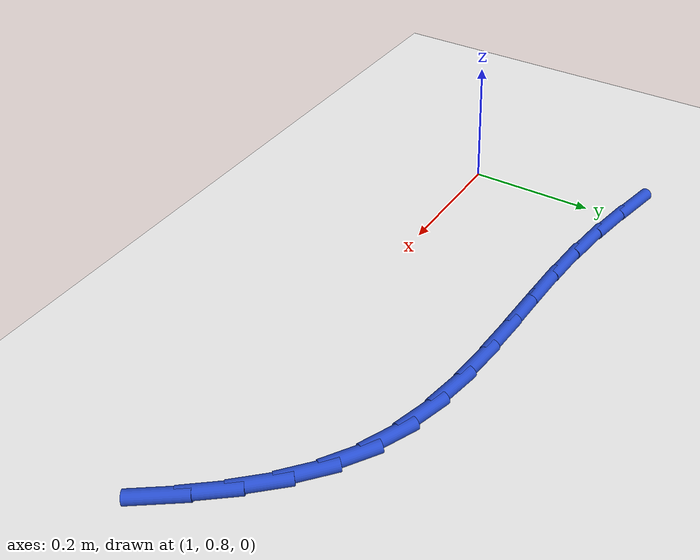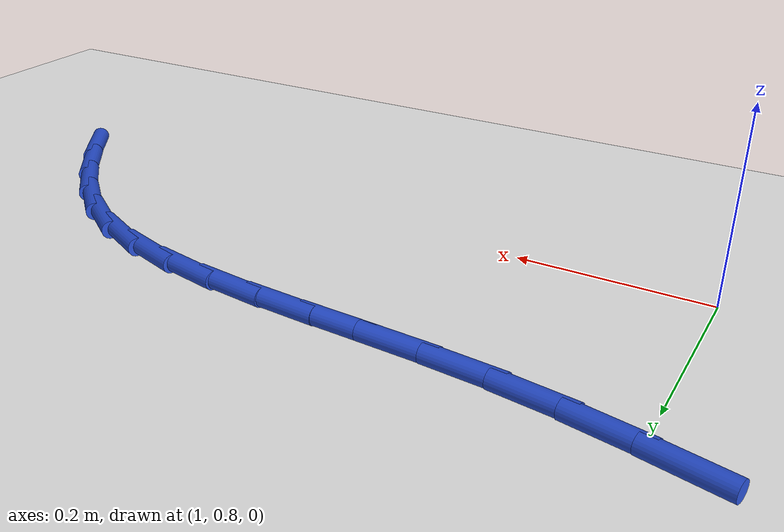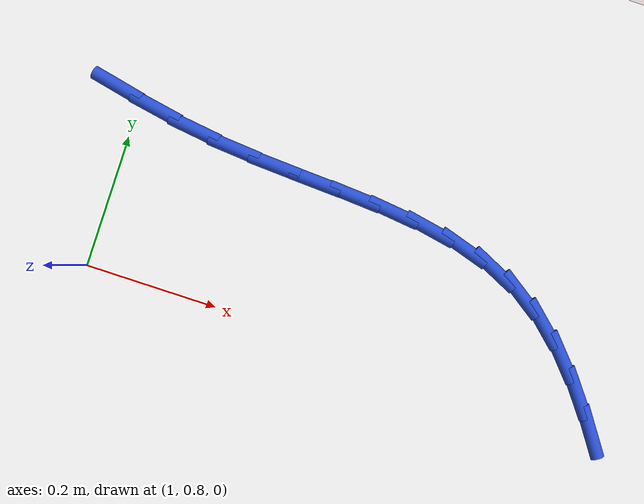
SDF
<sdf version="1.6">
 <world name="default">
  <model name="ground_plane">
   <static>1</static>
   <link name="link">
    <collision name="collision">
     <geometry><plane><normal>0 0 1</normal><size>100 100</size></plane></geometry>
     <surface><friction><ode><mu>100</mu><mu2>50</mu2></ode></friction></surface>
    </collision>
    <visual name="visual">
     <cast_shadows>0</cast_shadows>
     <geometry><plane><normal>0 0 1</normal><size>100 100</size></plane></geometry>
     <material>
      <script><uri>file://media/materials/scripts/gazebo.material</uri><name>Gazebo/WhiteGlow</name></script>
     </material>
    </visual>
   </link>
  </model>
  <model name="line">
   <link name="link_28">
    <pose>0.9638628912790067 1.0659548163425898 0.01 0 1.57 -0.21610102213397187</pose>
    <collision name="collision">
     <geometry><cylinder><radius>0.01</radius><length>0.08</length></cylinder></geometry>
    </collision>
    <visual name="visual">
     <material>
      <script><name>Gazebo/Blue</name><uri>file://media/materials/scripts/gazebo.material</uri></script>
     </material>
     <geometry><cylinder><radius>0.01</radius><length>0.08</length></cylinder></geometry>
    </visual>
   </link>
   <link name="link_29">
    <pose>1.0272113236072205 1.052047997177063 0.01 0 1.57 -0.18456379397973055</pose>
    <collision name="collision">
     <geometry><cylinder><radius>0.01</radius><length>0.08</length></cylinder></geometry>
    </collision>
    <visual name="visual">
     <material>
      <script><name>Gazebo/Blue</name><uri>file://media/materials/scripts/gazebo.material</uri></script>
     </material>
     <geometry><cylinder><radius>0.01</radius><length>0.08</length></cylinder></geometry>
    </visual>
   </link>
   <link name="link_30">
    <pose>1.0912292627138227 1.0400965908636473 0.01 0 1.57 -0.13372721459481365</pose>
    <collision name="collision">
     <geometry><cylinder><radius>0.01</radius><length>0.08</length></cylinder></geometry>
    </collision>
    <visual name="visual">
     <material>
      <script><name>Gazebo/Blue</name><uri>file://media/materials/scripts/gazebo.material</uri></script>
     </material>
     <geometry><cylinder><radius>0.01</radius><length>0.08</length></cylinder></geometry>
    </visual>
   </link>
   <link name="link_31">
    <pose>1.155617329324461 1.0314344575143537 0.01 0 1.57 -0.0845963498728071</pose>
    <collision name="collision">
     <geometry><cylinder><radius>0.01</radius><length>0.08</length></cylinder></geometry>
    </collision>
    <visual name="visual">
     <material>
      <script><name>Gazebo/Blue</name><uri>file://media/materials/scripts/gazebo.material</uri></script>
     </material>
     <geometry><cylinder><radius>0.01</radius><length>0.08</length></cylinder></geometry>
    </visual>
   </link>
   <link name="link_32">
    <pose>1.2199492180161533 1.0259791947310575 0.01 0 1.57 -0.05717277920120603</pose>
    <collision name="collision">
     <geometry><cylinder><radius>0.01</radius><length>0.08</length></cylinder></geometry>
    </collision>
    <visual name="visual">
     <material>
      <script><name>Gazebo/Blue</name><uri>file://media/materials/scripts/gazebo.material</uri></script>
     </material>
     <geometry><cylinder><radius>0.01</radius><length>0.08</length></cylinder></geometry>
    </visual>
   </link>
   <link name="link_33">
    <pose>1.2836806038269053 1.0223315189972246 0.01 0 1.57 -0.05251325180005245</pose>
    <collision name="collision">
     <geometry><cylinder><radius>0.01</radius><length>0.08</length></cylinder></geometry>
    </collision>
    <visual name="visual">
     <material>
      <script><name>Gazebo/Blue</name><uri>file://media/materials/scripts/gazebo.material</uri></script>
     </material>
     <geometry><cylinder><radius>0.01</radius><length>0.08</length></cylinder></geometry>
    </visual>
   </link>
   <link name="link_34">
    <pose>1.3462626771668105 1.0190421065922184 0.01 0 1.57 -0.07182414391564952</pose>
    <collision name="collision">
     <geometry><cylinder><radius>0.01</radius><length>0.08</length></cylinder></geometry>
    </collision>
    <visual name="visual">
     <material>
      <script><name>Gazebo/Blue</name><uri>file://media/materials/scripts/gazebo.material</uri></script>
     </material>
     <geometry><cylinder><radius>0.01</radius><length>0.08</length></cylinder></geometry>
    </visual>
   </link>
   <link name="link_35">
    <pose>1.407146628445965 1.0146616337954029 0.01 0 1.57 -0.11748525498872829</pose>
    <collision name="collision">
     <geometry><cylinder><radius>0.01</radius><length>0.08</length></cylinder></geometry>
    </collision>
    <visual name="visual">
     <material>
      <script><name>Gazebo/Blue</name><uri>file://media/materials/scripts/gazebo.material</uri></script>
     </material>
     <geometry><cylinder><radius>0.01</radius><length>0.08</length></cylinder></geometry>
    </visual>
   </link>
   <link name="link_36">
    <pose>1.4657836480744617 1.007740776886142 0.01 0 1.57 -0.19295443300244342</pose>
    <collision name="collision">
     <geometry><cylinder><radius>0.01</radius><length>0.08</length></cylinder></geometry>
    </collision>
    <visual name="visual">
     <material>
      <script><name>Gazebo/Blue</name><uri>file://media/materials/scripts/gazebo.material</uri></script>
     </material>
     <geometry><cylinder><radius>0.01</radius><length>0.08</length></cylinder></geometry>
    </visual>
   </link>
   <link name="link_37">
    <pose>1.521624926462396 0.9968302121437991 0.01 0 1.57 -0.3019191517630901</pose>
    <collision name="collision">
     <geometry><cylinder><radius>0.01</radius><length>0.08</length></cylinder></geometry>
    </collision>
    <visual name="visual">
     <material>
      <script><name>Gazebo/Blue</name><uri>file://media/materials/scripts/gazebo.material</uri></script>
     </material>
     <geometry><cylinder><radius>0.01</radius><length>0.08</length></cylinder></geometry>
    </visual>
   </link>
   <link name="link_38">
    <pose>1.5741216540198617 0.9804806158477382 0.01 0 1.57 -0.445974962604469</pose>
    <collision name="collision">
     <geometry><cylinder><radius>0.01</radius><length>0.08</length></cylinder></geometry>
    </collision>
    <visual name="visual">
     <material>
      <script><name>Gazebo/Blue</name><uri>file://media/materials/scripts/gazebo.material</uri></script>
     </material>
     <geometry><cylinder><radius>0.01</radius><length>0.08</length></cylinder></geometry>
    </visual>
   </link>
   <link name="link_39">
    <pose>1.6227252773839984 0.9572432029200593 0.01 0 1.57 -0.6085792953033681</pose>
    <collision name="collision">
     <geometry><cylinder><radius>0.01</radius><length>0.08</length></cylinder></geometry>
    </collision>
    <visual name="visual">
     <material>
      <script><name>Gazebo/Blue</name><uri>file://media/materials/scripts/gazebo.material</uri></script>
     </material>
     <geometry><cylinder><radius>0.01</radius><length>0.08</length></cylinder></geometry>
    </visual>
   </link>
   <link name="link_40">
    <pose>1.6671736584219021 0.92627129288633 0.01 0 1.57 -0.7464110415504612</pose>
    <collision name="collision">
     <geometry><cylinder><radius>0.01</radius><length>0.08</length></cylinder></geometry>
    </collision>
    <visual name="visual">
     <material>
      <script><name>Gazebo/Blue</name><uri>file://media/materials/scripts/gazebo.material</uri></script>
     </material>
     <geometry><cylinder><radius>0.01</radius><length>0.08</length></cylinder></geometry>
    </visual>
   </link>
   <link name="link_41">
    <pose>1.7080397132157739 0.8884736635525101 0.01 0 1.57 -0.851494523476498</pose>
    <collision name="collision">
     <geometry><cylinder><radius>0.01</radius><length>0.08</length></cylinder></geometry>
    </collision>
    <visual name="visual">
     <material>
      <script><name>Gazebo/Blue</name><uri>file://media/materials/scripts/gazebo.material</uri></script>
     </material>
     <geometry><cylinder><radius>0.01</radius><length>0.08</length></cylinder></geometry>
    </visual>
   </link>
   <link name="link_42">
    <pose>1.7460477156182566 0.8450772783544521 0.01 0 1.57 -0.926651208885449</pose>
    <collision name="collision">
     <geometry><cylinder><radius>0.01</radius><length>0.08</length></cylinder></geometry>
    </collision>
    <visual name="visual">
     <material>
      <script><name>Gazebo/Blue</name><uri>file://media/materials/scripts/gazebo.material</uri></script>
     </material>
     <geometry><cylinder><radius>0.01</radius><length>0.08</length></cylinder></geometry>
    </visual>
   </link>
   <link name="link_43">
    <pose>1.7819219394819947 0.797309100728008 0.01 0 1.57 -0.9757195632657295</pose>
    <collision name="collision">
     <geometry><cylinder><radius>0.01</radius><length>0.08</length></cylinder></geometry>
    </collision>
    <visual name="visual">
     <material>
      <script><name>Gazebo/Blue</name><uri>file://media/materials/scripts/gazebo.material</uri></script>
     </material>
     <geometry><cylinder><radius>0.01</radius><length>0.08</length></cylinder></geometry>
    </visual>
   </link>
  </model>
 </world>
</sdf>
